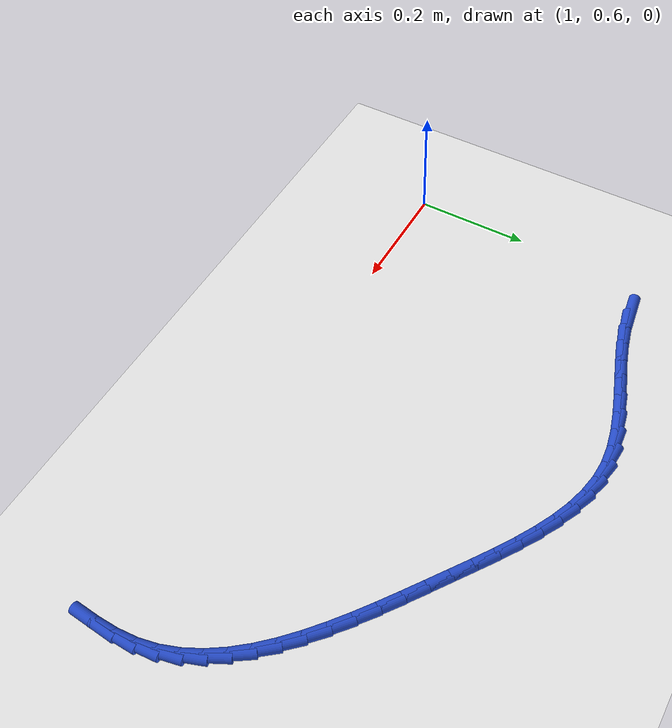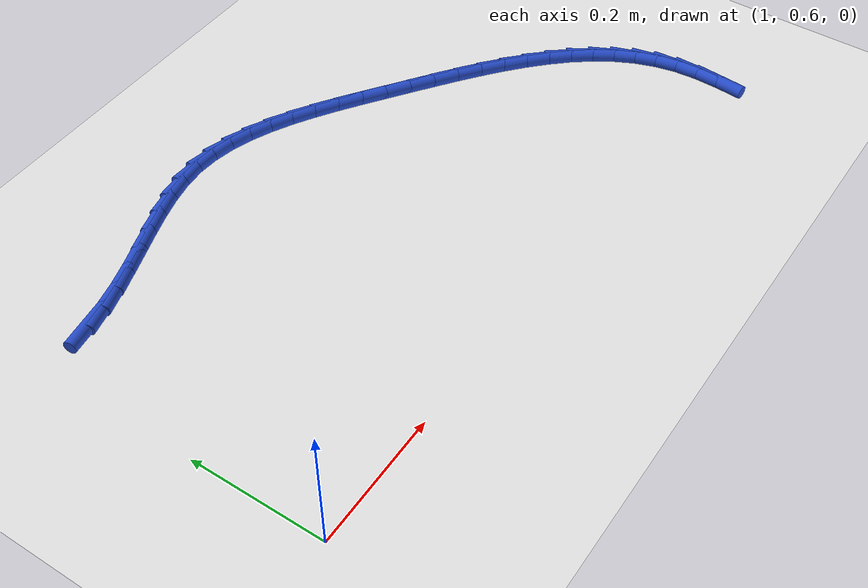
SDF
<sdf version="1.6">
 <world name="default">
  <model name="ground_plane">
   <static>1</static>
   <link name="link">
    <collision name="collision">
     <geometry><plane><normal>0 0 1</normal><size>100 100</size></plane></geometry>
     <surface><friction><ode><mu>100</mu><mu2>50</mu2></ode></friction></surface>
    </collision>
    <visual name="visual">
     <cast_shadows>0</cast_shadows>
     <geometry><plane><normal>0 0 1</normal><size>100 100</size></plane></geometry>
     <material>
      <script><uri>file://media/materials/scripts/gazebo.material</uri><name>Gazebo/WhiteGlow</name></script>
     </material>
    </visual>
   </link>
  </model>
  <model name="line">
   <link name="link_50">
    <pose>1.0782127935245418 1.0374431621160902 0.01 0 1.57 0.15181166804911284</pose>
    <collision name="collision">
     <geometry><cylinder><radius>0.01</radius><length>0.08</length></cylinder></geometry>
    </collision>
    <visual name="visual">
     <material>
      <script><name>Gazebo/Blue</name><uri>file://media/materials/scripts/gazebo.material</uri></script>
     </material>
     <geometry><cylinder><radius>0.01</radius><length>0.08</length></cylinder></geometry>
    </visual>
   </link>
   <link name="link_51">
    <pose>1.1121653526071058 1.0426375226234637 0.01 0 1.57 0.24269217356533637</pose>
    <collision name="collision">
     <geometry><cylinder><radius>0.01</radius><length>0.08</length></cylinder></geometry>
    </collision>
    <visual name="visual">
     <material>
      <script><name>Gazebo/Blue</name><uri>file://media/materials/scripts/gazebo.material</uri></script>
     </material>
     <geometry><cylinder><radius>0.01</radius><length>0.08</length></cylinder></geometry>
    </visual>
   </link>
   <link name="link_52">
    <pose>1.1461455980494946 1.0510500795578759 0.01 0 1.57 0.3032794079751414</pose>
    <collision name="collision">
     <geometry><cylinder><radius>0.01</radius><length>0.08</length></cylinder></geometry>
    </collision>
    <visual name="visual">
     <material>
      <script><name>Gazebo/Blue</name><uri>file://media/materials/scripts/gazebo.material</uri></script>
     </material>
     <geometry><cylinder><radius>0.01</radius><length>0.08</length></cylinder></geometry>
    </visual>
   </link>
   <link name="link_53">
    <pose>1.1800959197347394 1.0616742597253073 0.01 0 1.57 0.33607630048696785</pose>
    <collision name="collision">
     <geometry><cylinder><radius>0.01</radius><length>0.08</length></cylinder></geometry>
    </collision>
    <visual name="visual">
     <material>
      <script><name>Gazebo/Blue</name><uri>file://media/materials/scripts/gazebo.material</uri></script>
     </material>
     <geometry><cylinder><radius>0.01</radius><length>0.08</length></cylinder></geometry>
    </visual>
   </link>
   <link name="link_54">
    <pose>1.2139587075458738 1.073503489931738 0.01 0 1.57 0.3426475296527716</pose>
    <collision name="collision">
     <geometry><cylinder><radius>0.01</radius><length>0.08</length></cylinder></geometry>
    </collision>
    <visual name="visual">
     <material>
      <script><name>Gazebo/Blue</name><uri>file://media/materials/scripts/gazebo.material</uri></script>
     </material>
     <geometry><cylinder><radius>0.01</radius><length>0.08</length></cylinder></geometry>
    </visual>
   </link>
   <link name="link_55">
    <pose>1.2476763513659295 1.0855311969831476 0.01 0 1.57 0.3230384642343847</pose>
    <collision name="collision">
     <geometry><cylinder><radius>0.01</radius><length>0.08</length></cylinder></geometry>
    </collision>
    <visual name="visual">
     <material>
      <script><name>Gazebo/Blue</name><uri>file://media/materials/scripts/gazebo.material</uri></script>
     </material>
     <geometry><cylinder><radius>0.01</radius><length>0.08</length></cylinder></geometry>
    </visual>
   </link>
   <link name="link_56">
    <pose>1.2811912410779394 1.096750807685517 0.01 0 1.57 0.275618880519593</pose>
    <collision name="collision">
     <geometry><cylinder><radius>0.01</radius><length>0.08</length></cylinder></geometry>
    </collision>
    <visual name="visual">
     <material>
      <script><name>Gazebo/Blue</name><uri>file://media/materials/scripts/gazebo.material</uri></script>
     </material>
     <geometry><cylinder><radius>0.01</radius><length>0.08</length></cylinder></geometry>
    </visual>
   </link>
   <link name="link_57">
    <pose>1.314445766564936 1.1061557488448261 0.01 0 1.57 0.1972901157692355</pose>
    <collision name="collision">
     <geometry><cylinder><radius>0.01</radius><length>0.08</length></cylinder></geometry>
    </collision>
    <visual name="visual">
     <material>
      <script><name>Gazebo/Blue</name><uri>file://media/materials/scripts/gazebo.material</uri></script>
     </material>
     <geometry><cylinder><radius>0.01</radius><length>0.08</length></cylinder></geometry>
    </visual>
   </link>
   <link name="link_58">
    <pose>1.3473823177099518 1.1127394472670553 0.01 0 1.57 0.08443658635671142</pose>
    <collision name="collision">
     <geometry><cylinder><radius>0.01</radius><length>0.08</length></cylinder></geometry>
    </collision>
    <visual name="visual">
     <material>
      <script><name>Gazebo/Blue</name><uri>file://media/materials/scripts/gazebo.material</uri></script>
     </material>
     <geometry><cylinder><radius>0.01</radius><length>0.08</length></cylinder></geometry>
    </visual>
   </link>
   <link name="link_59">
    <pose>1.3799432849909703 1.115495336713165 0.01 0 1.57 -0.056012142532051674</pose>
    <collision name="collision">
     <geometry><cylinder><radius>0.01</radius><length>0.08</length></cylinder></geometry>
    </collision>
    <visual name="visual">
     <material>
      <script><name>Gazebo/Blue</name><uri>file://media/materials/scripts/gazebo.material</uri></script>
     </material>
     <geometry><cylinder><radius>0.01</radius><length>0.08</length></cylinder></geometry>
    </visual>
   </link>
   <link name="link_60">
    <pose>1.4120946459859458 1.113692584409685 0.01 0 1.57 -0.18909500730641726</pose>
    <collision name="collision">
     <geometry><cylinder><radius>0.01</radius><length>0.08</length></cylinder></geometry>
    </collision>
    <visual name="visual">
     <material>
      <script><name>Gazebo/Blue</name><uri>file://media/materials/scripts/gazebo.material</uri></script>
     </material>
     <geometry><cylinder><radius>0.01</radius><length>0.08</length></cylinder></geometry>
    </visual>
   </link>
   <link name="link_61">
    <pose>1.443888559443866 1.1076078164477157 0.01 0 1.57 -0.30328335693526753</pose>
    <collision name="collision">
     <geometry><cylinder><radius>0.01</radius><length>0.08</length></cylinder></geometry>
    </collision>
    <visual name="visual">
     <material>
      <script><name>Gazebo/Blue</name><uri>file://media/materials/scripts/gazebo.material</uri></script>
     </material>
     <geometry><cylinder><radius>0.01</radius><length>0.08</length></cylinder></geometry>
    </visual>
   </link>
   <link name="link_62">
    <pose>1.4753968615592399 1.0977476884791724 0.01 0 1.57 -0.39722403735083267</pose>
    <collision name="collision">
     <geometry><cylinder><radius>0.01</radius><length>0.08</length></cylinder></geometry>
    </collision>
    <visual name="visual">
     <material>
      <script><name>Gazebo/Blue</name><uri>file://media/materials/scripts/gazebo.material</uri></script>
     </material>
     <geometry><cylinder><radius>0.01</radius><length>0.08</length></cylinder></geometry>
    </visual>
   </link>
   <link name="link_63">
    <pose>1.5066913885265765 1.084618856155971 0.01 0 1.57 -0.47169354487999915</pose>
    <collision name="collision">
     <geometry><cylinder><radius>0.01</radius><length>0.08</length></cylinder></geometry>
    </collision>
    <visual name="visual">
     <material>
      <script><name>Gazebo/Blue</name><uri>file://media/materials/scripts/gazebo.material</uri></script>
     </material>
     <geometry><cylinder><radius>0.01</radius><length>0.08</length></cylinder></geometry>
    </visual>
   </link>
   <link name="link_64">
    <pose>1.5378439765403846 1.0687279751300263 0.01 0 1.57 -0.5284302229090233</pose>
    <collision name="collision">
     <geometry><cylinder><radius>0.01</radius><length>0.08</length></cylinder></geometry>
    </collision>
    <visual name="visual">
     <material>
      <script><name>Gazebo/Blue</name><uri>file://media/materials/scripts/gazebo.material</uri></script>
     </material>
     <geometry><cylinder><radius>0.01</radius><length>0.08</length></cylinder></geometry>
    </visual>
   </link>
   <link name="link_65">
    <pose>1.568926461795174 1.0505817010532537 0.01 0 1.57 -0.5693385582696825</pose>
    <collision name="collision">
     <geometry><cylinder><radius>0.01</radius><length>0.08</length></cylinder></geometry>
    </collision>
    <visual name="visual">
     <material>
      <script><name>Gazebo/Blue</name><uri>file://media/materials/scripts/gazebo.material</uri></script>
     </material>
     <geometry><cylinder><radius>0.01</radius><length>0.08</length></cylinder></geometry>
    </visual>
   </link>
   <link name="link_66">
    <pose>1.600010680485454 1.0306866895775688 0.01 0 1.57 -0.596074051037048</pose>
    <collision name="collision">
     <geometry><cylinder><radius>0.01</radius><length>0.08</length></cylinder></geometry>
    </collision>
    <visual name="visual">
     <material>
      <script><name>Gazebo/Blue</name><uri>file://media/materials/scripts/gazebo.material</uri></script>
     </material>
     <geometry><cylinder><radius>0.01</radius><length>0.08</length></cylinder></geometry>
    </visual>
   </link>
   <link name="link_67">
    <pose>1.631168468805733 1.0095495963548868 0.01 0 1.57 -0.6098739325952048</pose>
    <collision name="collision">
     <geometry><cylinder><radius>0.01</radius><length>0.08</length></cylinder></geometry>
    </collision>
    <visual name="visual">
     <material>
      <script><name>Gazebo/Blue</name><uri>file://media/materials/scripts/gazebo.material</uri></script>
     </material>
     <geometry><cylinder><radius>0.01</radius><length>0.08</length></cylinder></geometry>
    </visual>
   </link>
   <link name="link_68">
    <pose>1.6624716629505207 0.9876770770371232 0.01 0 1.57 -0.6123080314083231</pose>
    <collision name="collision">
     <geometry><cylinder><radius>0.01</radius><length>0.08</length></cylinder></geometry>
    </collision>
    <visual name="visual">
     <material>
      <script><name>Gazebo/Blue</name><uri>file://media/materials/scripts/gazebo.material</uri></script>
     </material>
     <geometry><cylinder><radius>0.01</radius><length>0.08</length></cylinder></geometry>
    </visual>
   </link>
   <link name="link_69">
    <pose>1.6939745453412336 0.9655507158599711 0.01 0 1.57 -0.6148315728116782</pose>
    <collision name="collision">
     <geometry><cylinder><radius>0.01</radius><length>0.08</length></cylinder></geometry>
    </collision>
    <visual name="visual">
     <material>
      <script><name>Gazebo/Blue</name><uri>file://media/materials/scripts/gazebo.material</uri></script>
     </material>
     <geometry><cylinder><radius>0.01</radius><length>0.08</length></cylinder></geometry>
    </visual>
   </link>
   <link name="link_70">
    <pose>1.7254849555225673 0.943300111653791 0.01 0 1.57 -0.625736549290346</pose>
    <collision name="collision">
     <geometry><cylinder><radius>0.01</radius><length>0.08</length></cylinder></geometry>
    </collision>
    <visual name="visual">
     <material>
      <script><name>Gazebo/Blue</name><uri>file://media/materials/scripts/gazebo.material</uri></script>
     </material>
     <geometry><cylinder><radius>0.01</radius><length>0.08</length></cylinder></geometry>
    </visual>
   </link>
   <link name="link_71">
    <pose>1.7566289856701462 0.9207952800862161 0.01 0 1.57 -0.6455079387296807</pose>
    <collision name="collision">
     <geometry><cylinder><radius>0.01</radius><length>0.08</length></cylinder></geometry>
    </collision>
    <visual name="visual">
     <material>
      <script><name>Gazebo/Blue</name><uri>file://media/materials/scripts/gazebo.material</uri></script>
     </material>
     <geometry><cylinder><radius>0.01</radius><length>0.08</length></cylinder></geometry>
    </visual>
   </link>
   <link name="link_72">
    <pose>1.7870284905742648 0.8979001847213931 0.01 0 1.57 -0.6747394434333985</pose>
    <collision name="collision">
     <geometry><cylinder><radius>0.01</radius><length>0.08</length></cylinder></geometry>
    </collision>
    <visual name="visual">
     <material>
      <script><name>Gazebo/Blue</name><uri>file://media/materials/scripts/gazebo.material</uri></script>
     </material>
     <geometry><cylinder><radius>0.01</radius><length>0.08</length></cylinder></geometry>
    </visual>
   </link>
   <link name="link_73">
    <pose>1.8163053250252157 0.8744787891234693 0.01 0 1.57 -0.7143205644950589</pose>
    <collision name="collision">
     <geometry><cylinder><radius>0.01</radius><length>0.08</length></cylinder></geometry>
    </collision>
    <visual name="visual">
     <material>
      <script><name>Gazebo/Blue</name><uri>file://media/materials/scripts/gazebo.material</uri></script>
     </material>
     <geometry><cylinder><radius>0.01</radius><length>0.08</length></cylinder></geometry>
    </visual>
   </link>
   <link name="link_74">
    <pose>1.844081343813294 0.8503950568565921 0.01 0 1.57 -0.7654132453417026</pose>
    <collision name="collision">
     <geometry><cylinder><radius>0.01</radius><length>0.08</length></cylinder></geometry>
    </collision>
    <visual name="visual">
     <material>
      <script><name>Gazebo/Blue</name><uri>file://media/materials/scripts/gazebo.material</uri></script>
     </material>
     <geometry><cylinder><radius>0.01</radius><length>0.08</length></cylinder></geometry>
    </visual>
   </link>
   <link name="link_75">
    <pose>1.8699784017287924 0.8255129514849087 0.01 0 1.57 -0.829379458999169</pose>
    <collision name="collision">
     <geometry><cylinder><radius>0.01</radius><length>0.08</length></cylinder></geometry>
    </collision>
    <visual name="visual">
     <material>
      <script><name>Gazebo/Blue</name><uri>file://media/materials/scripts/gazebo.material</uri></script>
     </material>
     <geometry><cylinder><radius>0.01</radius><length>0.08</length></cylinder></geometry>
    </visual>
   </link>
   <link name="link_76">
    <pose>1.8936183535620055 0.7996964365725665 0.01 0 1.57 -0.9076103711857294</pose>
    <collision name="collision">
     <geometry><cylinder><radius>0.01</radius><length>0.08</length></cylinder></geometry>
    </collision>
    <visual name="visual">
     <material>
      <script><name>Gazebo/Blue</name><uri>file://media/materials/scripts/gazebo.material</uri></script>
     </material>
     <geometry><cylinder><radius>0.01</radius><length>0.08</length></cylinder></geometry>
    </visual>
   </link>
   <link name="link_77">
    <pose>1.914623054103227 0.7728094756837127 0.01 0 1.57 -1.0011927811730217</pose>
    <collision name="collision">
     <geometry><cylinder><radius>0.01</radius><length>0.08</length></cylinder></geometry>
    </collision>
    <visual name="visual">
     <material>
      <script><name>Gazebo/Blue</name><uri>file://media/materials/scripts/gazebo.material</uri></script>
     </material>
     <geometry><cylinder><radius>0.01</radius><length>0.08</length></cylinder></geometry>
    </visual>
   </link>
   <link name="link_78">
    <pose>1.93261435814275 0.7447160323824943 0.01 0 1.57 -1.1103667829818296</pose>
    <collision name="collision">
     <geometry><cylinder><radius>0.01</radius><length>0.08</length></cylinder></geometry>
    </collision>
    <visual name="visual">
     <material>
      <script><name>Gazebo/Blue</name><uri>file://media/materials/scripts/gazebo.material</uri></script>
     </material>
     <geometry><cylinder><radius>0.01</radius><length>0.08</length></cylinder></geometry>
    </visual>
   </link>
   <link name="link_79">
    <pose>1.947214120470869 0.715280070233059 0.01 0 1.57 -1.2338335289501963</pose>
    <collision name="collision">
     <geometry><cylinder><radius>0.01</radius><length>0.08</length></cylinder></geometry>
    </collision>
    <visual name="visual">
     <material>
      <script><name>Gazebo/Blue</name><uri>file://media/materials/scripts/gazebo.material</uri></script>
     </material>
     <geometry><cylinder><radius>0.01</radius><length>0.08</length></cylinder></geometry>
    </visual>
   </link>
   <link name="link_80">
    <pose>1.9580441958778771 0.6843655527995535 0.01 0 1.57 -1.3681913488515838</pose>
    <collision name="collision">
     <geometry><cylinder><radius>0.01</radius><length>0.08</length></cylinder></geometry>
    </collision>
    <visual name="visual">
     <material>
      <script><name>Gazebo/Blue</name><uri>file://media/materials/scripts/gazebo.material</uri></script>
     </material>
     <geometry><cylinder><radius>0.01</radius><length>0.08</length></cylinder></geometry>
    </visual>
   </link>
   <link name="link_81">
    <pose>1.9647264391540689 0.6518364436461254 0.01 0 1.57 -1.5033694523254097</pose>
    <collision name="collision">
     <geometry><cylinder><radius>0.01</radius><length>0.08</length></cylinder></geometry>
    </collision>
    <visual name="visual">
     <material>
      <script><name>Gazebo/Blue</name><uri>file://media/materials/scripts/gazebo.material</uri></script>
     </material>
     <geometry><cylinder><radius>0.01</radius><length>0.08</length></cylinder></geometry>
    </visual>
   </link>
   <link name="link_82">
    <pose>1.9670372302159325 0.6176173269495185 0.01 0 1.57 1.537589407826876</pose>
    <collision name="collision">
     <geometry><cylinder><radius>0.01</radius><length>0.08</length></cylinder></geometry>
    </collision>
    <visual name="visual">
     <material>
      <script><name>Gazebo/Blue</name><uri>file://media/materials/scripts/gazebo.material</uri></script>
     </material>
     <geometry><cylinder><radius>0.01</radius><length>0.08</length></cylinder></geometry>
    </visual>
   </link>
   <link name="link_83">
    <pose>1.9658562330426916 0.5820656081201379 0.01 0 1.57 1.4798669553326602</pose>
    <collision name="collision">
     <geometry><cylinder><radius>0.01</radius><length>0.08</length></cylinder></geometry>
    </collision>
    <visual name="visual">
     <material>
      <script><name>Gazebo/Blue</name><uri>file://media/materials/scripts/gazebo.material</uri></script>
     </material>
     <geometry><cylinder><radius>0.01</radius><length>0.08</length></cylinder></geometry>
    </visual>
   </link>
  </model>
 </world>
</sdf>
